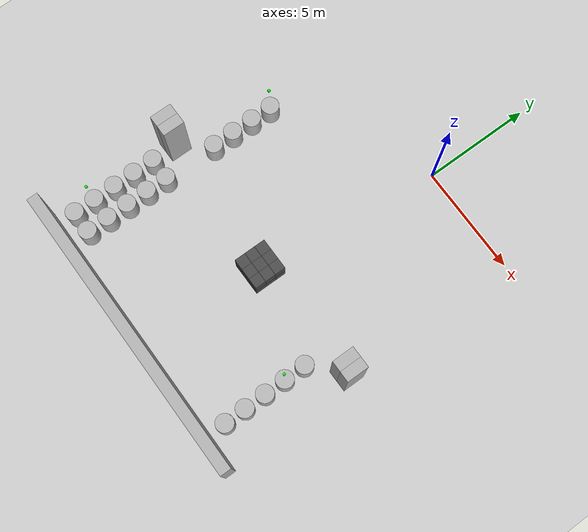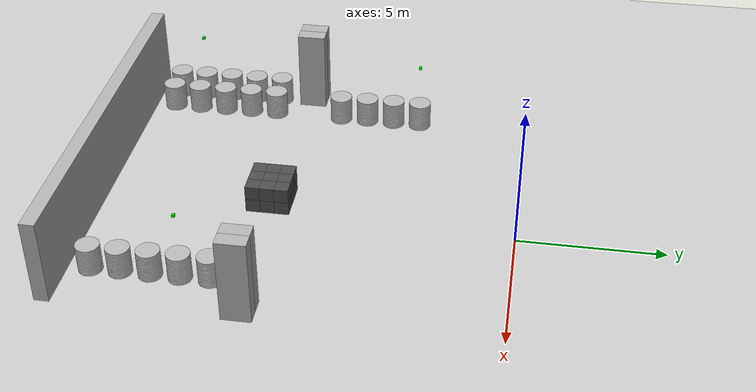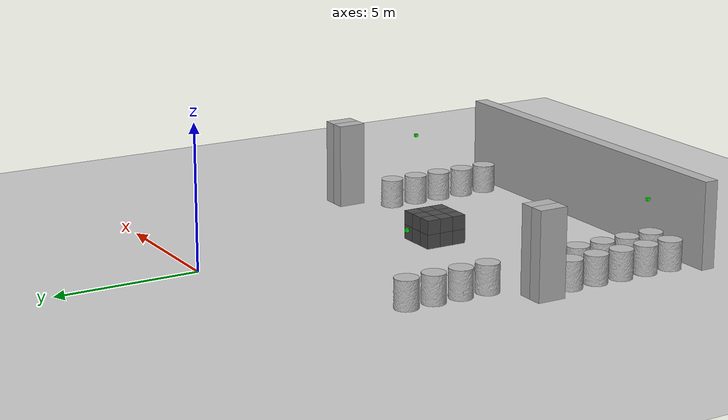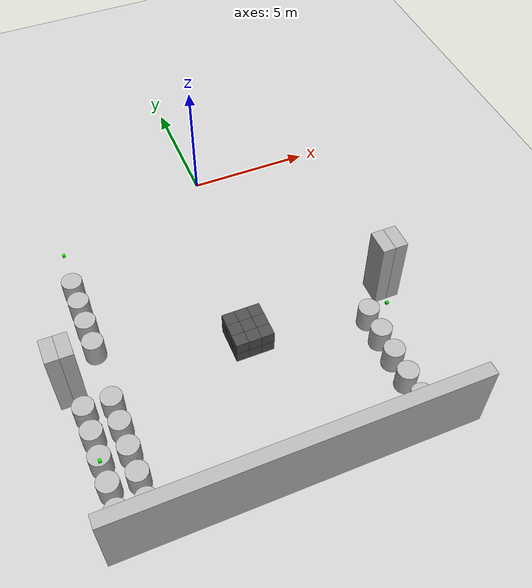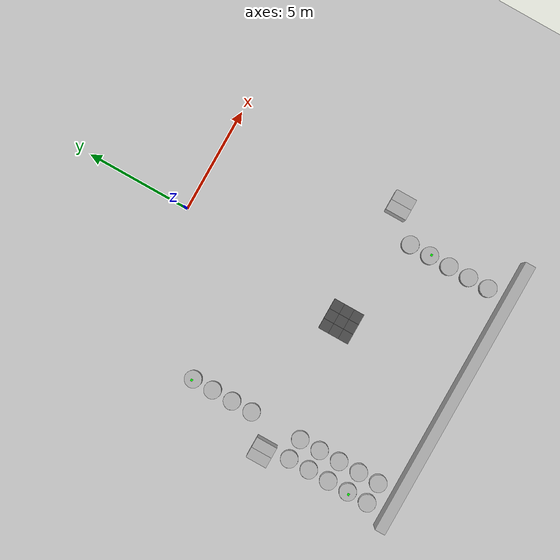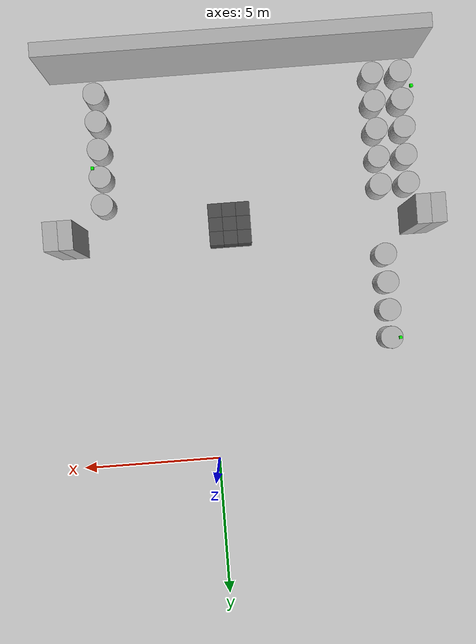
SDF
<sdf version="1.6">
 <world name="default">
  <include><uri>model://ground_plane</uri></include>
  <model name="wall_1">
   <pose frame="sim_world">-8.0 -8.25 1.5 0 0 0</pose>
   <static>True</static>
   <link name="wall_1_link">
    <inertial>
     <mass>100</mass>
     <inertia>
      <ixx>0.166667</ixx>
      <ixy>0</ixy>
      <ixz>0</ixz>
      <iyy>0.166667</iyy>
      <iyz>0</iyz>
      <izz>0.166667</izz>
     </inertia>
    </inertial>
    <collision name="wall_1_collision">
     <geometry><box><size>0.5 1.0 3.0</size></box></geometry>
     <max_contacts>100</max_contacts>
    </collision>
    <visual name="wall_1_visual">
     <geometry><box><size>0.5 1.0 3.0</size></box></geometry>
     <material><ambient>0.7 0.7 0.7 1</ambient><diffuse>0.7 0.7 0.7 1</diffuse></material>
    </visual>
   </link>
  </model>
  <model name="wall_4">
   <pose frame="sim_world">-7.5 -8.25 1.5 0 0 0</pose>
   <static>True</static>
   <link name="wall_4_link">
    <inertial>
     <mass>100</mass>
     <inertia>
      <ixx>0.166667</ixx>
      <ixy>0</ixy>
      <ixz>0</ixz>
      <iyy>0.166667</iyy>
      <iyz>0</iyz>
      <izz>0.166667</izz>
     </inertia>
    </inertial>
    <collision name="wall_4_collision">
     <geometry><box><size>0.5 1.0 3.0</size></box></geometry>
     <max_contacts>100</max_contacts>
    </collision>
    <visual name="wall_4_visual">
     <geometry><box><size>0.5 1.0 3.0</size></box></geometry>
     <material><ambient>0.7 0.7 0.7 1</ambient><diffuse>0.7 0.7 0.7 1</diffuse></material>
    </visual>
   </link>
  </model>
  <model name="wall_7">
   <pose frame="sim_world">4.5 -8.25 1.5 0 0 0</pose>
   <static>True</static>
   <link name="wall_7_link">
    <inertial>
     <mass>100</mass>
     <inertia>
      <ixx>0.166667</ixx>
      <ixy>0</ixy>
      <ixz>0</ixz>
      <iyy>0.166667</iyy>
      <iyz>0</iyz>
      <izz>0.166667</izz>
     </inertia>
    </inertial>
    <collision name="wall_7_collision">
     <geometry><box><size>0.5 1.0 3.0</size></box></geometry>
     <max_contacts>100</max_contacts>
    </collision>
    <visual name="wall_7_visual">
     <geometry><box><size>0.5 1.0 3.0</size></box></geometry>
     <material><ambient>0.7 0.7 0.7 1</ambient><diffuse>0.7 0.7 0.7 1</diffuse></material>
    </visual>
   </link>
  </model>
  <model name="wall_10">
   <pose frame="sim_world">5.0 -8.25 1.5 0 0 0</pose>
   <static>True</static>
   <link name="wall_10_link">
    <inertial>
     <mass>100</mass>
     <inertia>
      <ixx>0.166667</ixx>
      <ixy>0</ixy>
      <ixz>0</ixz>
      <iyy>0.166667</iyy>
      <iyz>0</iyz>
      <izz>0.166667</izz>
     </inertia>
    </inertial>
    <collision name="wall_10_collision">
     <geometry><box><size>0.5 1.0 3.0</size></box></geometry>
     <max_contacts>100</max_contacts>
    </collision>
    <visual name="wall_10_visual">
     <geometry><box><size>0.5 1.0 3.0</size></box></geometry>
     <material><ambient>0.7 0.7 0.7 1</ambient><diffuse>0.7 0.7 0.7 1</diffuse></material>
    </visual>
   </link>
  </model>
  <model name="wall_14">
   <pose frame="sim_world">-1.5 -14.5 1.5 0 0 0</pose>
   <static>True</static>
   <link name="wall_14_link">
    <inertial>
     <mass>100</mass>
     <inertia>
      <ixx>0.166667</ixx>
      <ixy>0</ixy>
      <ixz>0</ixz>
      <iyy>0.166667</iyy>
      <iyz>0</iyz>
      <izz>0.166667</izz>
     </inertia>
    </inertial>
    <collision name="wall_14_collision">
     <geometry><box><size>13.5 0.5 3.0</size></box></geometry>
     <max_contacts>100</max_contacts>
    </collision>
    <visual name="wall_14_visual">
     <geometry><box><size>13.5 0.5 3.0</size></box></geometry>
     <material><ambient>0.7 0.7 0.7 1</ambient><diffuse>0.7 0.7 0.7 1</diffuse></material>
    </visual>
   </link>
  </model>
  <model name="box_4">
   <pose frame="sim_world">-1.5 -9.0 0.25 0 -0 0</pose>
   <static>True</static>
   <link name="box_4_link">
    <inertial>
     <mass>100</mass>
     <inertia>
      <ixx>0.166667</ixx>
      <ixy>0</ixy>
      <ixz>0</ixz>
      <iyy>0.166667</iyy>
      <iyz>0</iyz>
      <izz>0.166667</izz>
     </inertia>
    </inertial>
    <collision name="box_4_collision">
     <geometry><box><size>0.5 0.5 0.5</size></box></geometry>
     <max_contacts>100</max_contacts>
    </collision>
    <visual name="box_4_visual">
     <geometry><box><size>0.5 0.5 0.5</size></box></geometry>
     <material><ambient>0.3 0.3 0.3 1</ambient><diffuse>0.3 0.3 0.3 1</diffuse></material>
    </visual>
   </link>
  </model>
  <model name="box_5">
   <pose frame="sim_world">-1.5 -9.0 0.75 0 -0 0</pose>
   <static>True</static>
   <link name="box_5_link">
    <inertial>
     <mass>100</mass>
     <inertia>
      <ixx>0.166667</ixx>
      <ixy>0</ixy>
      <ixz>0</ixz>
      <iyy>0.166667</iyy>
      <iyz>0</iyz>
      <izz>0.166667</izz>
     </inertia>
    </inertial>
    <collision name="box_5_collision">
     <geometry><box><size>0.5 0.5 0.5</size></box></geometry>
     <max_contacts>100</max_contacts>
    </collision>
    <visual name="box_5_visual">
     <geometry><box><size>0.5 0.5 0.5</size></box></geometry>
     <material><ambient>0.3 0.3 0.3 1</ambient><diffuse>0.3 0.3 0.3 1</diffuse></material>
    </visual>
   </link>
  </model>
  <model name="box_6">
   <pose frame="sim_world">-1.5 -8.5 0.25 0 -0 0</pose>
   <static>True</static>
   <link name="box_6_link">
    <inertial>
     <mass>100</mass>
     <inertia>
      <ixx>0.166667</ixx>
      <ixy>0</ixy>
      <ixz>0</ixz>
      <iyy>0.166667</iyy>
      <iyz>0</iyz>
      <izz>0.166667</izz>
     </inertia>
    </inertial>
    <collision name="box_6_collision">
     <geometry><box><size>0.5 0.5 0.5</size></box></geometry>
     <max_contacts>100</max_contacts>
    </collision>
    <visual name="box_6_visual">
     <geometry><box><size>0.5 0.5 0.5</size></box></geometry>
     <material><ambient>0.3 0.3 0.3 1</ambient><diffuse>0.3 0.3 0.3 1</diffuse></material>
    </visual>
   </link>
  </model>
  <model name="box_7">
   <pose frame="sim_world">-1.5 -8.5 0.75 0 -0 0</pose>
   <static>True</static>
   <link name="box_7_link">
    <inertial>
     <mass>100</mass>
     <inertia>
      <ixx>0.166667</ixx>
      <ixy>0</ixy>
      <ixz>0</ixz>
      <iyy>0.166667</iyy>
      <iyz>0</iyz>
      <izz>0.166667</izz>
     </inertia>
    </inertial>
    <collision name="box_7_collision">
     <geometry><box><size>0.5 0.5 0.5</size></box></geometry>
     <max_contacts>100</max_contacts>
    </collision>
    <visual name="box_7_visual">
     <geometry><box><size>0.5 0.5 0.5</size></box></geometry>
     <material><ambient>0.3 0.3 0.3 1</ambient><diffuse>0.3 0.3 0.3 1</diffuse></material>
    </visual>
   </link>
  </model>
  <model name="box_8">
   <pose frame="sim_world">-1.5 -8.0 0.25 0 -0 0</pose>
   <static>True</static>
   <link name="box_8_link">
    <inertial>
     <mass>100</mass>
     <inertia>
      <ixx>0.166667</ixx>
      <ixy>0</ixy>
      <ixz>0</ixz>
      <iyy>0.166667</iyy>
      <iyz>0</iyz>
      <izz>0.166667</izz>
     </inertia>
    </inertial>
    <collision name="box_8_collision">
     <geometry><box><size>0.5 0.5 0.5</size></box></geometry>
     <max_contacts>100</max_contacts>
    </collision>
    <visual name="box_8_visual">
     <geometry><box><size>0.5 0.5 0.5</size></box></geometry>
     <material><ambient>0.3 0.3 0.3 1</ambient><diffuse>0.3 0.3 0.3 1</diffuse></material>
    </visual>
   </link>
  </model>
  <model name="box_9">
   <pose frame="sim_world">-1.5 -8.0 0.75 0 -0 0</pose>
   <static>True</static>
   <link name="box_9_link">
    <inertial>
     <mass>100</mass>
     <inertia>
      <ixx>0.166667</ixx>
      <ixy>0</ixy>
      <ixz>0</ixz>
      <iyy>0.166667</iyy>
      <iyz>0</iyz>
      <izz>0.166667</izz>
     </inertia>
    </inertial>
    <collision name="box_9_collision">
     <geometry><box><size>0.5 0.5 0.5</size></box></geometry>
     <max_contacts>100</max_contacts>
    </collision>
    <visual name="box_9_visual">
     <geometry><box><size>0.5 0.5 0.5</size></box></geometry>
     <material><ambient>0.3 0.3 0.3 1</ambient><diffuse>0.3 0.3 0.3 1</diffuse></material>
    </visual>
   </link>
  </model>
  <model name="box_10">
   <pose frame="sim_world">-1.0 -9.0 0.25 0 -0 0</pose>
   <static>True</static>
   <link name="box_10_link">
    <inertial>
     <mass>100</mass>
     <inertia>
      <ixx>0.166667</ixx>
      <ixy>0</ixy>
      <ixz>0</ixz>
      <iyy>0.166667</iyy>
      <iyz>0</iyz>
      <izz>0.166667</izz>
     </inertia>
    </inertial>
    <collision name="box_10_collision">
     <geometry><box><size>0.5 0.5 0.5</size></box></geometry>
     <max_contacts>100</max_contacts>
    </collision>
    <visual name="box_10_visual">
     <geometry><box><size>0.5 0.5 0.5</size></box></geometry>
     <material><ambient>0.3 0.3 0.3 1</ambient><diffuse>0.3 0.3 0.3 1</diffuse></material>
    </visual>
   </link>
  </model>
  <model name="box_11">
   <pose frame="sim_world">-1.0 -9.0 0.75 0 -0 0</pose>
   <static>True</static>
   <link name="box_11_link">
    <inertial>
     <mass>100</mass>
     <inertia>
      <ixx>0.166667</ixx>
      <ixy>0</ixy>
      <ixz>0</ixz>
      <iyy>0.166667</iyy>
      <iyz>0</iyz>
      <izz>0.166667</izz>
     </inertia>
    </inertial>
    <collision name="box_11_collision">
     <geometry><box><size>0.5 0.5 0.5</size></box></geometry>
     <max_contacts>100</max_contacts>
    </collision>
    <visual name="box_11_visual">
     <geometry><box><size>0.5 0.5 0.5</size></box></geometry>
     <material><ambient>0.3 0.3 0.3 1</ambient><diffuse>0.3 0.3 0.3 1</diffuse></material>
    </visual>
   </link>
  </model>
  <model name="box_12">
   <pose frame="sim_world">-1.0 -8.5 0.25 0 -0 0</pose>
   <static>True</static>
   <link name="box_12_link">
    <inertial>
     <mass>100</mass>
     <inertia>
      <ixx>0.166667</ixx>
      <ixy>0</ixy>
      <ixz>0</ixz>
      <iyy>0.166667</iyy>
      <iyz>0</iyz>
      <izz>0.166667</izz>
     </inertia>
    </inertial>
    <collision name="box_12_collision">
     <geometry><box><size>0.5 0.5 0.5</size></box></geometry>
     <max_contacts>100</max_contacts>
    </collision>
    <visual name="box_12_visual">
     <geometry><box><size>0.5 0.5 0.5</size></box></geometry>
     <material><ambient>0.3 0.3 0.3 1</ambient><diffuse>0.3 0.3 0.3 1</diffuse></material>
    </visual>
   </link>
  </model>
  <model name="box_13">
   <pose frame="sim_world">-1.0 -8.5 0.75 0 -0 0</pose>
   <static>True</static>
   <link name="box_13_link">
    <inertial>
     <mass>100</mass>
     <inertia>
      <ixx>0.166667</ixx>
      <ixy>0</ixy>
      <ixz>0</ixz>
      <iyy>0.166667</iyy>
      <iyz>0</iyz>
      <izz>0.166667</izz>
     </inertia>
    </inertial>
    <collision name="box_13_collision">
     <geometry><box><size>0.5 0.5 0.5</size></box></geometry>
     <max_contacts>100</max_contacts>
    </collision>
    <visual name="box_13_visual">
     <geometry><box><size>0.5 0.5 0.5</size></box></geometry>
     <material><ambient>0.3 0.3 0.3 1</ambient><diffuse>0.3 0.3 0.3 1</diffuse></material>
    </visual>
   </link>
  </model>
  <model name="box_14">
   <pose frame="sim_world">-1.0 -8.0 0.25 0 -0 0</pose>
   <static>True</static>
   <link name="box_14_link">
    <inertial>
     <mass>100</mass>
     <inertia>
      <ixx>0.166667</ixx>
      <ixy>0</ixy>
      <ixz>0</ixz>
      <iyy>0.166667</iyy>
      <iyz>0</iyz>
      <izz>0.166667</izz>
     </inertia>
    </inertial>
    <collision name="box_14_collision">
     <geometry><box><size>0.5 0.5 0.5</size></box></geometry>
     <max_contacts>100</max_contacts>
    </collision>
    <visual name="box_14_visual">
     <geometry><box><size>0.5 0.5 0.5</size></box></geometry>
     <material><ambient>0.3 0.3 0.3 1</ambient><diffuse>0.3 0.3 0.3 1</diffuse></material>
    </visual>
   </link>
  </model>
  <model name="box_15">
   <pose frame="sim_world">-1.0 -8.0 0.75 0 -0 0</pose>
   <static>True</static>
   <link name="box_15_link">
    <inertial>
     <mass>100</mass>
     <inertia>
      <ixx>0.166667</ixx>
      <ixy>0</ixy>
      <ixz>0</ixz>
      <iyy>0.166667</iyy>
      <iyz>0</iyz>
      <izz>0.166667</izz>
     </inertia>
    </inertial>
    <collision name="box_15_collision">
     <geometry><box><size>0.5 0.5 0.5</size></box></geometry>
     <max_contacts>100</max_contacts>
    </collision>
    <visual name="box_15_visual">
     <geometry><box><size>0.5 0.5 0.5</size></box></geometry>
     <material><ambient>0.3 0.3 0.3 1</ambient><diffuse>0.3 0.3 0.3 1</diffuse></material>
    </visual>
   </link>
  </model>
  <model name="box_16">
   <pose frame="sim_world">-0.5 -9.0 0.25 0 -0 0</pose>
   <static>True</static>
   <link name="box_16_link">
    <inertial>
     <mass>100</mass>
     <inertia>
      <ixx>0.166667</ixx>
      <ixy>0</ixy>
      <ixz>0</ixz>
      <iyy>0.166667</iyy>
      <iyz>0</iyz>
      <izz>0.166667</izz>
     </inertia>
    </inertial>
    <collision name="box_16_collision">
     <geometry><box><size>0.5 0.5 0.5</size></box></geometry>
     <max_contacts>100</max_contacts>
    </collision>
    <visual name="box_16_visual">
     <geometry><box><size>0.5 0.5 0.5</size></box></geometry>
     <material><ambient>0.3 0.3 0.3 1</ambient><diffuse>0.3 0.3 0.3 1</diffuse></material>
    </visual>
   </link>
  </model>
  <model name="box_17">
   <pose frame="sim_world">-0.5 -9.0 0.75 0 -0 0</pose>
   <static>True</static>
   <link name="box_17_link">
    <inertial>
     <mass>100</mass>
     <inertia>
      <ixx>0.166667</ixx>
      <ixy>0</ixy>
      <ixz>0</ixz>
      <iyy>0.166667</iyy>
      <iyz>0</iyz>
      <izz>0.166667</izz>
     </inertia>
    </inertial>
    <collision name="box_17_collision">
     <geometry><box><size>0.5 0.5 0.5</size></box></geometry>
     <max_contacts>100</max_contacts>
    </collision>
    <visual name="box_17_visual">
     <geometry><box><size>0.5 0.5 0.5</size></box></geometry>
     <material><ambient>0.3 0.3 0.3 1</ambient><diffuse>0.3 0.3 0.3 1</diffuse></material>
    </visual>
   </link>
  </model>
  <model name="box_18">
   <pose frame="sim_world">-0.5 -8.5 0.25 0 -0 0</pose>
   <static>True</static>
   <link name="box_18_link">
    <inertial>
     <mass>100</mass>
     <inertia>
      <ixx>0.166667</ixx>
      <ixy>0</ixy>
      <ixz>0</ixz>
      <iyy>0.166667</iyy>
      <iyz>0</iyz>
      <izz>0.166667</izz>
     </inertia>
    </inertial>
    <collision name="box_18_collision">
     <geometry><box><size>0.5 0.5 0.5</size></box></geometry>
     <max_contacts>100</max_contacts>
    </collision>
    <visual name="box_18_visual">
     <geometry><box><size>0.5 0.5 0.5</size></box></geometry>
     <material><ambient>0.3 0.3 0.3 1</ambient><diffuse>0.3 0.3 0.3 1</diffuse></material>
    </visual>
   </link>
  </model>
  <model name="box_19">
   <pose frame="sim_world">-0.5 -8.5 0.75 0 -0 0</pose>
   <static>True</static>
   <link name="box_19_link">
    <inertial>
     <mass>100</mass>
     <inertia>
      <ixx>0.166667</ixx>
      <ixy>0</ixy>
      <ixz>0</ixz>
      <iyy>0.166667</iyy>
      <iyz>0</iyz>
      <izz>0.166667</izz>
     </inertia>
    </inertial>
    <collision name="box_19_collision">
     <geometry><box><size>0.5 0.5 0.5</size></box></geometry>
     <max_contacts>100</max_contacts>
    </collision>
    <visual name="box_19_visual">
     <geometry><box><size>0.5 0.5 0.5</size></box></geometry>
     <material><ambient>0.3 0.3 0.3 1</ambient><diffuse>0.3 0.3 0.3 1</diffuse></material>
    </visual>
   </link>
  </model>
  <model name="box_20">
   <pose frame="sim_world">-0.5 -8.0 0.25 0 -0 0</pose>
   <static>True</static>
   <link name="box_20_link">
    <inertial>
     <mass>100</mass>
     <inertia>
      <ixx>0.166667</ixx>
      <ixy>0</ixy>
      <ixz>0</ixz>
      <iyy>0.166667</iyy>
      <iyz>0</iyz>
      <izz>0.166667</izz>
     </inertia>
    </inertial>
    <collision name="box_20_collision">
     <geometry><box><size>0.5 0.5 0.5</size></box></geometry>
     <max_contacts>100</max_contacts>
    </collision>
    <visual name="box_20_visual">
     <geometry><box><size>0.5 0.5 0.5</size></box></geometry>
     <material><ambient>0.3 0.3 0.3 1</ambient><diffuse>0.3 0.3 0.3 1</diffuse></material>
    </visual>
   </link>
  </model>
  <model name="box_21">
   <pose frame="sim_world">-0.5 -8.0 0.75 0 -0 0</pose>
   <static>True</static>
   <link name="box_21_link">
    <inertial>
     <mass>100</mass>
     <inertia>
      <ixx>0.166667</ixx>
      <ixy>0</ixy>
      <ixz>0</ixz>
      <iyy>0.166667</iyy>
      <iyz>0</iyz>
      <izz>0.166667</izz>
     </inertia>
    </inertial>
    <collision name="box_21_collision">
     <geometry><box><size>0.5 0.5 0.5</size></box></geometry>
     <max_contacts>100</max_contacts>
    </collision>
    <visual name="box_21_visual">
     <geometry><box><size>0.5 0.5 0.5</size></box></geometry>
     <material><ambient>0.3 0.3 0.3 1</ambient><diffuse>0.3 0.3 0.3 1</diffuse></material>
    </visual>
   </link>
  </model>
  <model name="barrel_0">
   <pose>-7.49946386043 -13.4956394423 0.5 0 -0 0</pose>
   <static>true</static>
   <link name="link_barrel_0">
    <collision name="collision_barrel_0">
     <geometry><mesh><uri>model://barrel_store_custom/models/barrel_0.dae</uri></mesh></geometry>
    </collision>
    <visual name="visual_barrel_0">
     <geometry><mesh><uri>model://barrel_store_custom/models/barrel_0.dae</uri></mesh></geometry>
    </visual>
   </link>
  </model>
  <model name="barrel_1">
   <pose>-7.49531910349 -12.4995036273 0.5 0 -0 0</pose>
   <static>true</static>
   <link name="link_barrel_1">
    <collision name="collision_barrel_1">
     <geometry><mesh><uri>model://barrel_store_custom/models/barrel_1.dae</uri></mesh></geometry>
    </collision>
    <visual name="visual_barrel_1">
     <geometry><mesh><uri>model://barrel_store_custom/models/barrel_1.dae</uri></mesh></geometry>
    </visual>
   </link>
   <model name="radiation_source_barrel_1">
    <pose>-0.00298047065735 -0.00448846817017 -1.72853469849e-06 0 0 0</pose>
    <static>true</static>
    <link name="link_radiation_source_barrel_1">
     <visual name="visual_radiation_source_barrel_1_0">
      <geometry><box><size>0.1 0.1 0.1</size></box></geometry>
      <material><ambient>1 0.0  0 1.0</ambient><diffuse>1 0.0  0 1.0</diffuse></material>
     </visual>
     <visual name="visual_radiation_source_barrel_1_1">
      <pose>0 0 2.0 0 0 0</pose>
      <geometry><box><size>0.1 0.1 0.1</size></box></geometry>
      <material><ambient>0 1.0  0 1.0</ambient><diffuse>0 1.0  0 1.0</diffuse></material>
     </visual>
     <sensor name="radiation_source_barrel_1" type="radiation_source">
      <always_on>1</always_on>
      <update_rate>1.0</update_rate>
      <topic>source_8/gamma</topic>
      <plugin filename="libradiation_source_plugin.so" name="radiation_source_plugin"/>
     </sensor>
    </link>
   </model>
  </model>
  <model name="barrel_2">
   <pose>-7.50325126906 -11.4971504168 0.5 0 -0 0</pose>
   <static>true</static>
   <link name="link_barrel_2">
    <collision name="collision_barrel_2">
     <geometry><mesh><uri>model://barrel_store_custom/models/barrel_2.dae</uri></mesh></geometry>
    </collision>
    <visual name="visual_barrel_2">
     <geometry><mesh><uri>model://barrel_store_custom/models/barrel_2.dae</uri></mesh></geometry>
    </visual>
   </link>
  </model>
  <model name="barrel_3">
   <pose>-7.49551055436 -10.4985981043 0.5 0 -0 0</pose>
   <static>true</static>
   <link name="link_barrel_3">
    <collision name="collision_barrel_3">
     <geometry><mesh><uri>model://barrel_store_custom/models/barrel_3.dae</uri></mesh></geometry>
    </collision>
    <visual name="visual_barrel_3">
     <geometry><mesh><uri>model://barrel_store_custom/models/barrel_3.dae</uri></mesh></geometry>
    </visual>
   </link>
  </model>
  <model name="barrel_4">
   <pose>-7.50290582448 -9.49903662212 0.5 0 -0 0</pose>
   <static>true</static>
   <link name="link_barrel_4">
    <collision name="collision_barrel_4">
     <geometry><mesh><uri>model://barrel_store_custom/models/barrel_4.dae</uri></mesh></geometry>
    </collision>
    <visual name="visual_barrel_4">
     <geometry><mesh><uri>model://barrel_store_custom/models/barrel_4.dae</uri></mesh></geometry>
    </visual>
   </link>
  </model>
  <model name="barrel_18">
   <pose>-6.49693306228 -13.5004257762 0.5 0 -0 0</pose>
   <static>true</static>
   <link name="link_barrel_18">
    <collision name="collision_barrel_18">
     <geometry><mesh><uri>model://barrel_store_custom/models/barrel_18.dae</uri></mesh></geometry>
    </collision>
    <visual name="visual_barrel_18">
     <geometry><mesh><uri>model://barrel_store_custom/models/barrel_18.dae</uri></mesh></geometry>
    </visual>
   </link>
  </model>
  <model name="barrel_19">
   <pose>-6.49695345535 -12.5018535626 0.5 0 -0 0</pose>
   <static>true</static>
   <link name="link_barrel_19">
    <collision name="collision_barrel_19">
     <geometry><mesh><uri>model://barrel_store_custom/models/barrel_19.dae</uri></mesh></geometry>
    </collision>
    <visual name="visual_barrel_19">
     <geometry><mesh><uri>model://barrel_store_custom/models/barrel_19.dae</uri></mesh></geometry>
    </visual>
   </link>
  </model>
  <model name="barrel_20">
   <pose>-6.50212149624 -11.496830809 0.5 0 -0 0</pose>
   <static>true</static>
   <link name="link_barrel_20">
    <collision name="collision_barrel_20">
     <geometry><mesh><uri>model://barrel_store_custom/models/barrel_20.dae</uri></mesh></geometry>
    </collision>
    <visual name="visual_barrel_20">
     <geometry><mesh><uri>model://barrel_store_custom/models/barrel_20.dae</uri></mesh></geometry>
    </visual>
   </link>
  </model>
  <model name="barrel_21">
   <pose>-6.50454517076 -10.4964281128 0.5 0 -0 0</pose>
   <static>true</static>
   <link name="link_barrel_21">
    <collision name="collision_barrel_21">
     <geometry><mesh><uri>model://barrel_store_custom/models/barrel_21.dae</uri></mesh></geometry>
    </collision>
    <visual name="visual_barrel_21">
     <geometry><mesh><uri>model://barrel_store_custom/models/barrel_21.dae</uri></mesh></geometry>
    </visual>
   </link>
  </model>
  <model name="barrel_22">
   <pose>-6.50299599045 -9.50155309343 0.5 0 -0 0</pose>
   <static>true</static>
   <link name="link_barrel_22">
    <collision name="collision_barrel_22">
     <geometry><mesh><uri>model://barrel_store_custom/models/barrel_22.dae</uri></mesh></geometry>
    </collision>
    <visual name="visual_barrel_22">
     <geometry><mesh><uri>model://barrel_store_custom/models/barrel_22.dae</uri></mesh></geometry>
    </visual>
   </link>
  </model>
  <model name="barrel_23">
   <pose>-6.49629804898 -6.99982288057 0.5 0 -0 0</pose>
   <static>true</static>
   <link name="link_barrel_23">
    <collision name="collision_barrel_23">
     <geometry><mesh><uri>model://barrel_store_custom/models/barrel_23.dae</uri></mesh></geometry>
    </collision>
    <visual name="visual_barrel_23">
     <geometry><mesh><uri>model://barrel_store_custom/models/barrel_23.dae</uri></mesh></geometry>
    </visual>
   </link>
  </model>
  <model name="barrel_24">
   <pose>-6.50458308935 -5.99709717446 0.5 0 -0 0</pose>
   <static>true</static>
   <link name="link_barrel_24">
    <collision name="collision_barrel_24">
     <geometry><mesh><uri>model://barrel_store_custom/models/barrel_24.dae</uri></mesh></geometry>
    </collision>
    <visual name="visual_barrel_24">
     <geometry><mesh><uri>model://barrel_store_custom/models/barrel_24.dae</uri></mesh></geometry>
    </visual>
   </link>
  </model>
  <model name="barrel_25">
   <pose>-6.50007409914 -4.99692166561 0.5 0 -0 0</pose>
   <static>true</static>
   <link name="link_barrel_25">
    <collision name="collision_barrel_25">
     <geometry><mesh><uri>model://barrel_store_custom/models/barrel_25.dae</uri></mesh></geometry>
    </collision>
    <visual name="visual_barrel_25">
     <geometry><mesh><uri>model://barrel_store_custom/models/barrel_25.dae</uri></mesh></geometry>
    </visual>
   </link>
  </model>
  <model name="barrel_26">
   <pose>-6.50052807486 -4.00340981999 0.5 0 -0 0</pose>
   <static>true</static>
   <link name="link_barrel_26">
    <collision name="collision_barrel_26">
     <geometry><mesh><uri>model://barrel_store_custom/models/barrel_26.dae</uri></mesh></geometry>
    </collision>
    <visual name="visual_barrel_26">
     <geometry><mesh><uri>model://barrel_store_custom/models/barrel_26.dae</uri></mesh></geometry>
    </visual>
   </link>
   <model name="radiation_source_barrel_26">
    <pose>-0.00298047065735 -0.00448846817017 -1.72853469849e-06 0 0 0</pose>
    <static>true</static>
    <link name="link_radiation_source_barrel_26">
     <visual name="visual_radiation_source_barrel_26_0">
      <geometry><box><size>0.1 0.1 0.1</size></box></geometry>
      <material><ambient>1 0.0  0 1.0</ambient><diffuse>1 0.0  0 1.0</diffuse></material>
     </visual>
     <visual name="visual_radiation_source_barrel_26_1">
      <pose>0 0 2.0 0 0 0</pose>
      <geometry><box><size>0.1 0.1 0.1</size></box></geometry>
      <material><ambient>0 1.0  0 1.0</ambient><diffuse>0 1.0  0 1.0</diffuse></material>
     </visual>
     <sensor name="radiation_source_barrel_26" type="radiation_source">
      <always_on>1</always_on>
      <update_rate>1.0</update_rate>
      <topic>source_9/gamma</topic>
      <plugin filename="libradiation_source_plugin.so" name="radiation_source_plugin"/>
     </sensor>
    </link>
   </model>
  </model>
  <model name="barrel_40">
   <pose>3.50478503802 -13.4952279437 0.5 0 -0 0</pose>
   <static>true</static>
   <link name="link_barrel_40">
    <collision name="collision_barrel_40">
     <geometry><mesh><uri>model://barrel_store_custom/models/barrel_40.dae</uri></mesh></geometry>
    </collision>
    <visual name="visual_barrel_40">
     <geometry><mesh><uri>model://barrel_store_custom/models/barrel_40.dae</uri></mesh></geometry>
    </visual>
   </link>
  </model>
  <model name="barrel_41">
   <pose>3.49748140139 -12.5000571083 0.5 0 -0 0</pose>
   <static>true</static>
   <link name="link_barrel_41">
    <collision name="collision_barrel_41">
     <geometry><mesh><uri>model://barrel_store_custom/models/barrel_41.dae</uri></mesh></geometry>
    </collision>
    <visual name="visual_barrel_41">
     <geometry><mesh><uri>model://barrel_store_custom/models/barrel_41.dae</uri></mesh></geometry>
    </visual>
   </link>
  </model>
  <model name="barrel_42">
   <pose>3.50077971932 -11.4971480165 0.5 0 -0 0</pose>
   <static>true</static>
   <link name="link_barrel_42">
    <collision name="collision_barrel_42">
     <geometry><mesh><uri>model://barrel_store_custom/models/barrel_42.dae</uri></mesh></geometry>
    </collision>
    <visual name="visual_barrel_42">
     <geometry><mesh><uri>model://barrel_store_custom/models/barrel_42.dae</uri></mesh></geometry>
    </visual>
   </link>
  </model>
  <model name="barrel_43">
   <pose>3.50009043412 -10.5032076123 0.5 0 -0 0</pose>
   <static>true</static>
   <link name="link_barrel_43">
    <collision name="collision_barrel_43">
     <geometry><mesh><uri>model://barrel_store_custom/models/barrel_43.dae</uri></mesh></geometry>
    </collision>
    <visual name="visual_barrel_43">
     <geometry><mesh><uri>model://barrel_store_custom/models/barrel_43.dae</uri></mesh></geometry>
    </visual>
   </link>
   <model name="radiation_source_barrel_43">
    <pose>-0.00298047065735 -0.00448846817017 -1.72853469849e-06 0 0 0</pose>
    <static>true</static>
    <link name="link_radiation_source_barrel_43">
     <visual name="visual_radiation_source_barrel_43_0">
      <geometry><box><size>0.1 0.1 0.1</size></box></geometry>
      <material><ambient>1 0.0  0 1.0</ambient><diffuse>1 0.0  0 1.0</diffuse></material>
     </visual>
     <visual name="visual_radiation_source_barrel_43_1">
      <pose>0 0 2.0 0 0 0</pose>
      <geometry><box><size>0.1 0.1 0.1</size></box></geometry>
      <material><ambient>0 1.0  0 1.0</ambient><diffuse>0 1.0  0 1.0</diffuse></material>
     </visual>
     <sensor name="radiation_source_barrel_43" type="radiation_source">
      <always_on>1</always_on>
      <update_rate>1.0</update_rate>
      <topic>source_5/gamma</topic>
      <plugin filename="libradiation_source_plugin.so" name="radiation_source_plugin"/>
     </sensor>
    </link>
   </model>
  </model>
  <model name="barrel_44">
   <pose>3.50022217071 -9.50349951887 0.5 0 -0 0</pose>
   <static>true</static>
   <link name="link_barrel_44">
    <collision name="collision_barrel_44">
     <geometry><mesh><uri>model://barrel_store_custom/models/barrel_44.dae</uri></mesh></geometry>
    </collision>
    <visual name="visual_barrel_44">
     <geometry><mesh><uri>model://barrel_store_custom/models/barrel_44.dae</uri></mesh></geometry>
    </visual>
   </link>
  </model>
  <model name="ground_plane"><link name="ground_plane"/></model>
 </world>
</sdf>
